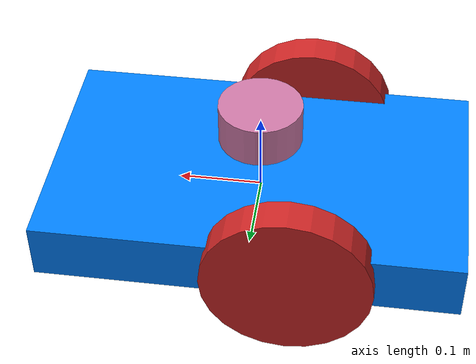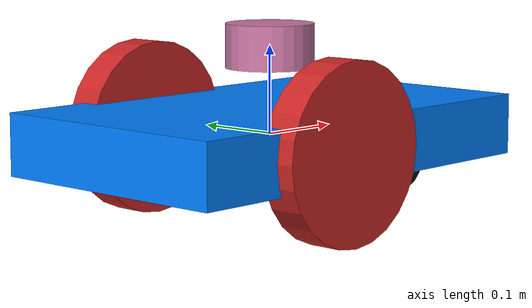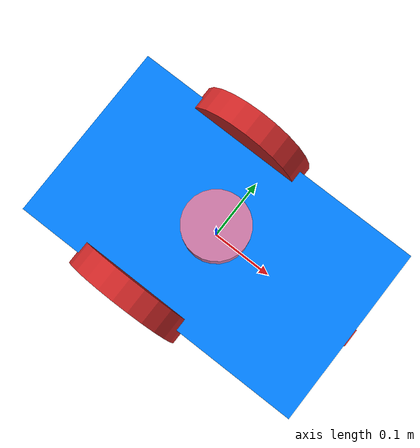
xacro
<?xml version="1.0" ?>
<robot name="com760Bot" xmlns:xacro="https://www.ros.org/wiki/xacro" >

 <!-- Xacro support added (body intentionally untouched) -->
  <xacro:property name="robot_name" value="Group6Bot_1"/>

    <!-- Create a robot chassis as Base Link -->
    <link name="${robot_name}/base_link">
      <visual>
        <origin rpy="0 0 0" xyz="0 0 0"/>
            <geometry>
              <box size="0.5 0.3 0.07"/>
            </geometry>
            <material name="blue">
                  <color rgba="0.0 0.5 1.0 1.0"/>
            </material>
       </visual>
      <!-- Base pose, collision and inertial -->
      <pose>0 0 0.1 0 0 0</pose>
      <collision>
        <geometry>
          <box size="0.5 0.3 0.07"/>
        </geometry>
      </collision>
      <inertial>
        <mass value="5"/>
        <origin rpy="0 0 0" xyz="0 0 0.1"/>
        <inertia ixx="0.03954" ixy="0" ixz="0" iyy="0.10621" iyz="0" izz="0.10621"/>
      </inertial>

      <!-- caster -->
        <visual name="caster">
        <origin rpy=" 0 0 0" xyz="0.2 0 -0.05"/>
        <geometry>
          <sphere radius="0.05"/>
        </geometry>
        <material name="black">
          <color rgba="0.05 0.05 0.05 1.0"/>
        </material>
      </visual>
      <!-- Caster collision and inertial -->
        <collision>
        <origin xyz="0.35 0 -0.05" rpy="0 0 0" />
        <geometry>
          <sphere radius="0.05" />
        </geometry>
      </collision>
      <inertial>
        <mass value="0.5"/>
        <inertia ixx="0.0005" ixy="0.0" ixz="0.0" iyy="0.0005" iyz="0.0" izz="0.0005"/>
      </inertial>
    </link>

    <!-- Caster -->
<link name="${robot_name}/caster_link">
  <visual>
    <geometry>
      <sphere radius="0.05"/>
    </geometry>
  </visual>
</link>

<joint name="caster_joint" type="fixed">
  <parent link="${robot_name}/base_link"/>
  <child link="${robot_name}/caster_link"/>
  <origin xyz="0.2 0 -0.05"/>
</joint>

  <!-- Create wheel right -->
     <link name="${robot_name}/right_wheel">
        <visual>
          <origin rpy="0 1.5707 1.5707" xyz="0 0 0"/>
          <geometry>
            <cylinder length="0.04" radius="0.1"/>
          </geometry>
        </visual>
        <!--right wheel collision and inertial-->
        <collision>
          <origin rpy="0 1.5707 1.5707" xyz="0 0 0" />
          <geometry>
            <cylinder length="0.04" radius="0.1"/>
          </geometry>
        </collision>
        <inertial>
          <mass value="0.2"/>
          <origin rpy="0 1.5707 1.5707" xyz="0 0 0"/>
          <inertia ixx="0.000527" ixy="0" ixz="0" iyy="0.000527" iyz="0" izz="0.001"/>
        </inertial>
    </link>

    <!--   Joint for right wheel  -->
    <joint name="joint_right_wheel" type="continuous">
      <origin rpy="0 0 0" xyz="-0.05 0.15 0"/>
      <child link="${robot_name}/right_wheel"/>
      <parent link="${robot_name}/base_link"/>
      <axis rpy="0 0 0" xyz="0 1 0"/>
      <limit effort="10000" velocity="1000"/>
      <joint_properties damping="1.0" friction="1.0" />
    </joint>

    <!-- Left Wheel link -->
    <link name="${robot_name}/left_wheel">
      <visual>
        <origin rpy="0 1.5706 1.5707" xyz="0 0 0"/>
        <geometry>
          <cylinder length="0.04" radius="0.1"/>
        </geometry>
      </visual>
      <!--left wheel collision and inertial-->
      <collision>
        <origin rpy="0 1.5707 1.5707" xyz="0 0 0" />
        <geometry>
          <cylinder length="0.04" radius="0.1"/>
        </geometry>
      </collision>
      <inertial>
        <mass value="0.2"/>
        <origin rpy="0 1.5707 1.5707" xyz="0 0 0"/>
        <inertia ixx="0.000527" ixy="0" ixz="0" iyy="0.000527" iyz="0" izz="0.001"/>
      </inertial>

    </link>

    <!--   Joint for left wheel  -->
    <joint name="joint_left_wheel" type="continuous">
      <origin rpy="0 0 0" xyz="-0.05 -0.15 0"/>
      <child link="${robot_name}/left_wheel"/>
      <parent link="${robot_name}/base_link"/>
      <axis rpy="0 0 0" xyz="0 1 0"/>
      <limit effort="10000" velocity="1000"/>
      <joint_properties damping="1.0" friction="1.0" />
    </joint>

    <!--specifying color in Gazebo-->
    <gazebo reference="${robot_name}/base_link">
        <material>Gazebo/Green</material>
    </gazebo>
    <gazebo reference="${robot_name}/left_wheel">
        <material>Gazebo/Red</material>
    </gazebo>
    <gazebo reference="${robot_name}/right_wheel">
        <material>Gazebo/Red</material>
    </gazebo>

    <!--adding a differential drive plugin-->
    <gazebo>
      <plugin filename="libgazebo_ros_diff_drive.so" name="differential_drive_controller">
        <alwaysOn>true</alwaysOn>
        <updateRate>20</updateRate>
        <leftJoint>joint_left_wheel</leftJoint>
        <rightJoint>joint_right_wheel</rightJoint>
        <wheelSeparation>0.4</wheelSeparation>
        <wheelDiameter>0.2</wheelDiameter>
        <torque>0.1</torque>
        <robotNamespace>${robot_name}</robotNamespace>
        <commandTopic>cmd_vel</commandTopic>
        <odometryTopic>odom</odometryTopic>
        <odometryFrame>${robot_name}/odom</odometryFrame>
        <robotBaseFrame>${robot_name}/base_link</robotBaseFrame>
        <!-- Set to true to publish transforms for the wheel links, defaults to false -->
        <publishWheelTF>false</publishWheelTF>
        <!-- Set to true to publish sensor_msgs/JointState on /joint_states for the wheel joints, defaults to false -->
        <publishWheelJointState>true</publishWheelJointState>
        <legacyMode>true</legacyMode>
      </plugin>
    </gazebo>

     <!--   Adding a camera -->
  <joint name="camera_joint" type="fixed">
        <parent link="${robot_name}/base_link"/>
        <child link="${robot_name}/camera_link"/>
        <origin xyz="0.25 0 0" rpy="0 0 0"/>
    </joint>

    <link name="${robot_name}/camera_link">
        <visual>
            <geometry>
                <box size="0.010 0.03 0.03"/>
            </geometry>
            <material name="red"/>
        </visual>
    </link>

    <link name="${robot_name}/camera_link_optical"></link>

     <joint name="camera_optical_joint" type="fixed">
        <parent link="${robot_name}/camera_link"/>
        <child link="${robot_name}/camera_link_optical"/>
        <origin xyz="0 0 0" rpy="-1.57 0 -1.57"/>
    </joint>

    <gazebo reference="${robot_name}/camera_link">
        <material>Gazebo/Red</material>

        <sensor name="camera" type="camera">
            <pose> 0 0 0 0 0 0 </pose>
            <visualize>false</visualize>
            <update_rate>10</update_rate>
            <camera>
                <horizontal_fov>1.089</horizontal_fov>
                <image>
                    <format>R8G8B8</format>
                    <width>640</width>
                    <height>480</height>
                </image>
                <clip>
                    <near>0.05</near>
                    <far>8.0</far>
                </clip>
            </camera>
            <plugin name="camera_controller" filename="libgazebo_ros_camera.so">
                <alwaysOn>true</alwaysOn>
                <updateRate>0.0</updateRate>
                <cameraName>${robot_name}/camera</cameraName>
                <imageTopicName>image_raw</imageTopicName>
                <cameraInfoTopicName>camera_info</cameraInfoTopicName>
                <frameName>${robot_name}/camera_link_optical</frameName>
            </plugin>
        </sensor>
    </gazebo>

    <!-- Adding LiDAR sensor -->
    <link name="${robot_name}/laser_link">
  <visual>
    <geometry>
      <cylinder length="0.05" radius="0.05"/>
    </geometry>
  </visual>
</link>

<joint name="laser_joint" type="fixed">
  <parent link="${robot_name}/base_link"/>
  <child link="${robot_name}/laser_link"/>
  <origin xyz="0.0 0 0.1" rpy="0 0 0"/>
</joint>

<gazebo reference="${robot_name}/laser_link">
  <sensor type="ray" name="laser">
    <update_rate>10</update_rate>
    <ray>
      <scan>
        <horizontal>
          <samples>720</samples>
          <min_angle>-1.57</min_angle>
          <max_angle>1.57</max_angle>
        </horizontal>
      </scan>
      <range>
        <min>0.1</min>
        <max>10.0</max>
      </range>
    </ray>

    <plugin name="laser_controller" filename="libgazebo_ros_laser.so">
      <topicName>${robot_name}/scan</topicName>
      <frameName>${robot_name}/laser_link</frameName>
    </plugin>

  </sensor>
</gazebo>

</robot>
